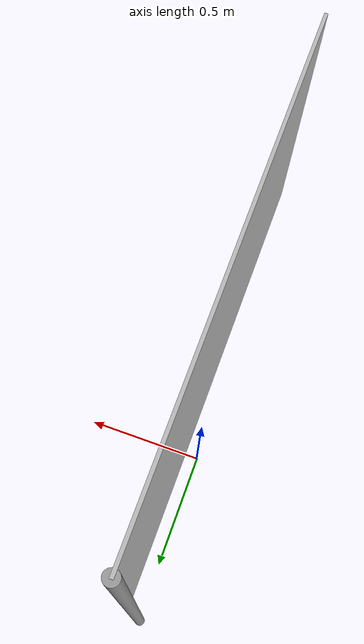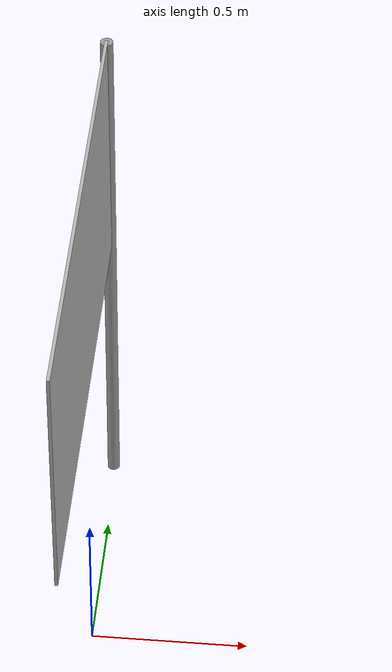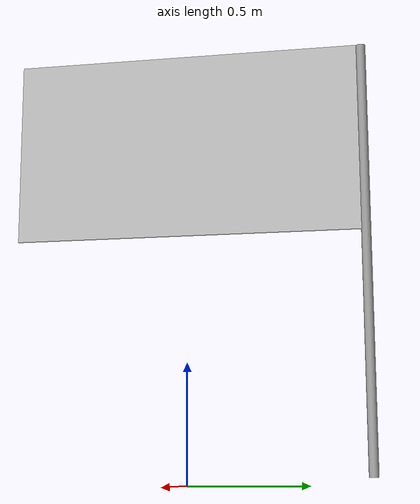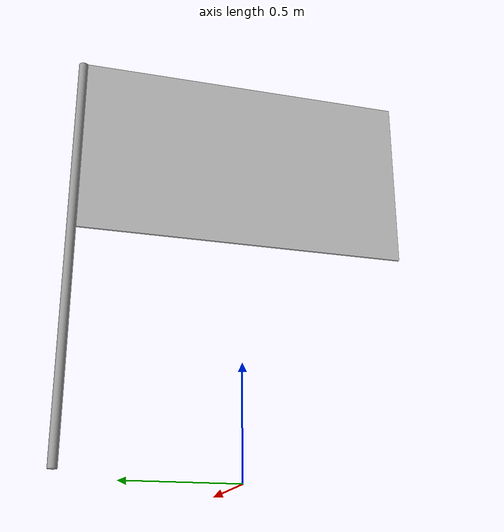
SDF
<?xml version='1.0'?>
<sdf version='1.6'>
  <model name='bandeira_brasil'>
    <link name='link'>
      <self_collide>0</self_collide>
      <enable_wind>0</enable_wind>
      <kinematic>0</kinematic>
      <pose frame=''>-0.006584 0 1.43772 3.14159 -1.56622 3.14159</pose>
      <visual name='visual'>
        <cast_shadows>0</cast_shadows>
        <geometry>
          <box>
            <size>0.8 1.5 0.01</size>
          </box>
        </geometry>
        <material>
          <script>
            <uri>model://bandeira_brasil/materials/scripts</uri>
            <uri>model://bandeira_brasil/materials/textures</uri>
            <name>FS/bandeira_brasil</name>
          </script>
          <shader type='pixel'/>
        </material>
        <pose frame=''>0 0 0 0 -0 0</pose>
        <transparency>0</transparency>
      </visual>
      <collision name='collision'>
        <laser_retro>0</laser_retro>
        <max_contacts>10</max_contacts>
        <pose frame=''>0 0 0 0 -0 0</pose>
        <geometry>
          <box>
            <size>0.8 1.5 0.01</size>
          </box>
        </geometry>
        <surface>
          <friction>
            <ode>
              <mu>1</mu>
              <mu2>1</mu2>
              <fdir1>0 0 0</fdir1>
              <slip1>0</slip1>
              <slip2>0</slip2>
            </ode>
            <torsional>
              <coefficient>1</coefficient>
              <patch_radius>0</patch_radius>
              <surface_radius>0</surface_radius>
              <use_patch_radius>1</use_patch_radius>
              <ode>
                <slip>0</slip>
              </ode>
            </torsional>
          </friction>
          <bounce>
            <restitution_coefficient>0</restitution_coefficient>
            <threshold>1e+06</threshold>
          </bounce>
          <contact>
            <collide_without_contact>0</collide_without_contact>
            <collide_without_contact_bitmask>1</collide_without_contact_bitmask>
            <collide_bitmask>1</collide_bitmask>
            <ode>
              <soft_cfm>0</soft_cfm>
              <soft_erp>0.2</soft_erp>
              <kp>1e+13</kp>
              <kd>1</kd>
              <max_vel>0.01</max_vel>
              <min_depth>0</min_depth>
            </ode>
            <bullet>
              <split_impulse>1</split_impulse>
              <split_impulse_penetration_threshold>-0.01</split_impulse_penetration_threshold>
              <soft_cfm>0</soft_cfm>
              <soft_erp>0.2</soft_erp>
              <kp>1e+13</kp>
              <kd>1</kd>
            </bullet>
          </contact>
        </surface>
      </collision>
    </link>
    <link name='link_2'>
      <inertial>
        <mass>1</mass>
        <inertia>
          <ixx>0.145833</ixx>
          <ixy>0</ixy>
          <ixz>0</ixz>
          <iyy>0.145833</iyy>
          <iyz>0</iyz>
          <izz>0.125</izz>
        </inertia>
        <pose frame=''>0 0 0 0 -0 0</pose>
      </inertial>
      <pose frame=''>-0.007394 0.746902 0.934549 0 -0 0</pose>
      <gravity>1</gravity>
      <self_collide>0</self_collide>
      <kinematic>0</kinematic>
      <enable_wind>0</enable_wind>
      <visual name='visual'>
        <pose frame=''>0 0 0 0 -0 0</pose>
        <geometry>
          <cylinder>
            <radius>0.02</radius>
            <length>1.8</length>
          </cylinder>
        </geometry>
        <material>
          <lighting>1</lighting>
          <script>
            <uri>file://media/materials/scripts/gazebo.material</uri>
            <name>Gazebo/Grey</name>
          </script>
          <shader type='pixel'>
            <normal_map>__default__</normal_map>
          </shader>
          <ambient>0.3 0.3 0.3 1</ambient>
          <diffuse>0.7 0.7 0.7 1</diffuse>
          <specular>0.01 0.01 0.01 1</specular>
          <emissive>0 0 0 1</emissive>
        </material>
        <transparency>0</transparency>
        <cast_shadows>1</cast_shadows>
      </visual>
      <collision name='collision'>
        <laser_retro>0</laser_retro>
        <max_contacts>10</max_contacts>
        <pose frame=''>0 0 0 0 -0 0</pose>
        <geometry>
          <cylinder>
            <radius>0.02</radius>
            <length>1</length>
          </cylinder>
        </geometry>
        <surface>
          <friction>
            <ode>
              <mu>1</mu>
              <mu2>1</mu2>
              <fdir1>0 0 0</fdir1>
              <slip1>0</slip1>
              <slip2>0</slip2>
            </ode>
            <torsional>
              <coefficient>1</coefficient>
              <patch_radius>0</patch_radius>
              <surface_radius>0</surface_radius>
              <use_patch_radius>1</use_patch_radius>
              <ode>
                <slip>0</slip>
              </ode>
            </torsional>
          </friction>
          <bounce>
            <restitution_coefficient>0</restitution_coefficient>
            <threshold>1e+06</threshold>
          </bounce>
          <contact>
            <collide_without_contact>0</collide_without_contact>
            <collide_without_contact_bitmask>1</collide_without_contact_bitmask>
            <collide_bitmask>1</collide_bitmask>
            <ode>
              <soft_cfm>0</soft_cfm>
              <soft_erp>0.2</soft_erp>
              <kp>1e+13</kp>
              <kd>1</kd>
              <max_vel>0.01</max_vel>
              <min_depth>0</min_depth>
            </ode>
            <bullet>
              <split_impulse>1</split_impulse>
              <split_impulse_penetration_threshold>-0.01</split_impulse_penetration_threshold>
              <soft_cfm>0</soft_cfm>
              <soft_erp>0.2</soft_erp>
              <kp>1e+13</kp>
              <kd>1</kd>
            </bullet>
          </contact>
        </surface>
      </collision>
    </link>
    <static>1</static>
    <allow_auto_disable>1</allow_auto_disable>
  </model>
</sdf>
